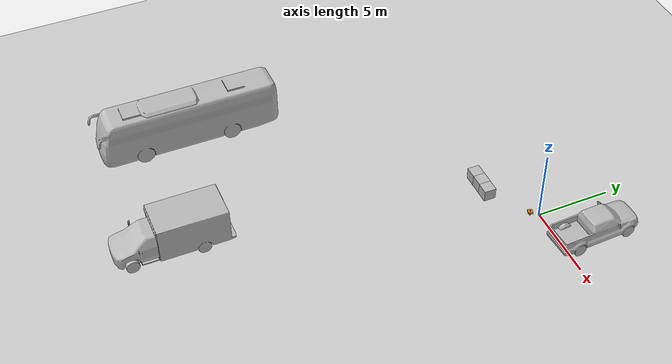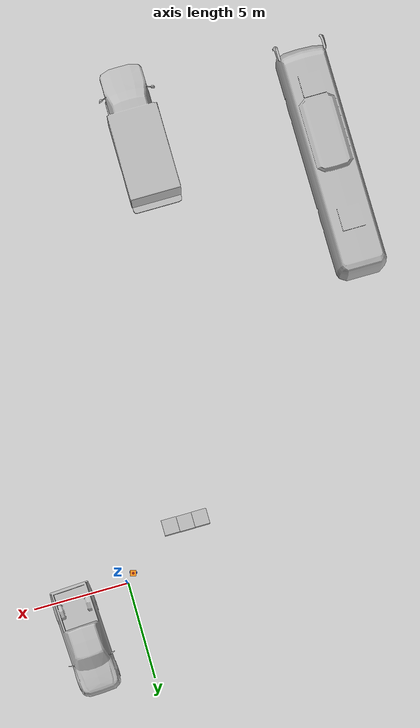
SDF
<sdf version="1.7">
 <world name="default">
  <light name="sun" type="directional">
   <pose>0 0 10 0 -0 0</pose>
   <diffuse>0.8 0.8 0.8 1</diffuse>
   <specular>0.2 0.2 0.2 1</specular>
   <attenuation>
    <range>1000</range>
    <constant>0.9</constant>
    <linear>0.01</linear>
    <quadratic>0.001</quadratic>
   </attenuation>
   <direction>-0.5 0.1 -0.9</direction>
   <spot><inner_angle>0</inner_angle><outer_angle>0</outer_angle><falloff>0</falloff></spot>
  </light>
  <model name="ground_plane">
   <static>1</static>
   <link name="link">
    <collision name="collision">
     <geometry><plane><normal>0 0 1</normal><size>100 100</size></plane></geometry>
     <surface><friction><ode><mu>100</mu><mu2>50</mu2></ode></friction></surface>
    </collision>
    <visual name="visual">
     <cast_shadows>0</cast_shadows>
     <geometry><plane><normal>0 0 1</normal><size>100 100</size></plane></geometry>
     <material>
      <script><uri>file://media/materials/scripts/gazebo.material</uri><name>Gazebo/Grey</name></script>
     </material>
    </visual>
   </link>
  </model>
  <gravity>0 0 -9.8</gravity>
  <magnetic_field>6e-06 2.3e-05 -4.2e-05</magnetic_field>
  <atmosphere type="adiabatic"/>
  <physics type="ode">
   <max_step_size>0.001</max_step_size>
   <real_time_factor>1</real_time_factor>
   <real_time_update_rate>1000</real_time_update_rate>
  </physics>
  <scene><ambient>0.4 0.4 0.4 1</ambient><background>0.7 0.7 0.7 1</background><shadows>1</shadows></scene>
  <audio><device>default</device></audio>
  <spherical_coordinates>
   <surface_model>EARTH_WGS84</surface_model>
   <latitude_deg>0</latitude_deg>
   <longitude_deg>0</longitude_deg>
   <elevation>0</elevation>
   <heading_deg>0</heading_deg>
  </spherical_coordinates>
  <model name="alpr_bot">
   <link name="base_link">
    <inertial>
     <pose>0.062857 0 0.077857 0 -0 0</pose>
     <mass>0.7</mass>
     <inertia>
      <ixx>0.00632262</ixx>
      <ixy>0</ixy>
      <ixz>0.000700714</ixz>
      <iyy>0.0070169</iyy>
      <iyz>0</iyz>
      <izz>0.00841929</izz>
     </inertia>
    </inertial>
    <collision name="base_link_fixed_joint_lump__chassis_collision">
     <pose>0.05 0 0.075 0 -0 0</pose>
     <geometry><box><size>0.3 0.3 0.15</size></box></geometry>
    </collision>
    <collision name="base_link_fixed_joint_lump__caster_wheel_collision_1">
     <pose>0.14 0 0 0 -0 0</pose>
     <geometry><sphere><radius>0.05</radius></sphere></geometry>
     <surface><friction><ode><mu>0.001</mu><mu2>0.001</mu2></ode></friction></surface>
    </collision>
    <collision name="base_link_fixed_joint_lump__laser_link_collision_2">
     <pose>0.05 0 0.17 0 -0 0</pose>
     <geometry><cylinder><length>0.04</length><radius>0.05</radius></cylinder></geometry>
    </collision>
    <visual name="base_link_fixed_joint_lump__chassis_visual">
     <pose>0.05 0 0.075 0 -0 0</pose>
     <geometry><box><size>0.3 0.3 0.15</size></box></geometry>
     <material>
      <script><name>Gazebo/Orange</name><uri>file://media/materials/scripts/gazebo.material</uri></script>
     </material>
    </visual>
    <visual name="base_link_fixed_joint_lump__caster_wheel_visual_1">
     <pose>0.14 0 0 0 -0 0</pose>
     <geometry><sphere><radius>0.05</radius></sphere></geometry>
     <material>
      <script><name>Gazebo/White</name><uri>file://media/materials/scripts/gazebo.material</uri></script>
     </material>
    </visual>
    <visual name="base_link_fixed_joint_lump__laser_link_visual_2">
     <pose>0.05 0 0.17 0 -0 0</pose>
     <geometry><cylinder><length>0.04</length><radius>0.05</radius></cylinder></geometry>
     <material>
      <script><name>Gazebo/Red</name><uri>file://media/materials/scripts/gazebo.material</uri></script>
     </material>
    </visual>
    <sensor name="laser" type="ray">
     <visualize>1</visualize>
     <update_rate>10</update_rate>
     <ray>
      <scan>
       <horizontal>
        <samples>360</samples>
        <min_angle>-3.14</min_angle>
        <max_angle>3.14</max_angle>
        <resolution>1</resolution>
       </horizontal>
       <vertical><samples>1</samples><min_angle>0</min_angle><max_angle>0</max_angle></vertical>
      </scan>
      <range><min>0.3</min><max>12</max></range>
     </ray>
     <plugin name="laser_controller" filename="libgazebo_ros_ray_sensor.so">
      <ros><argument>~/out:=scan</argument></ros>
      <output_type>sensor_msgs/LaserScan</output_type>
      <frame_name>laser_link</frame_name>
     </plugin>
     <pose>0.05 0 0.17 0 -0 0</pose>
    </sensor>
   </link>
   <joint name="left_wheel_joint" type="revolute">
    <pose relative_to="base_link">0 0.175 0 -1.5708 0 0</pose>
    <parent>base_link</parent>
    <child>left_wheel</child>
    <axis>
     <xyz>0 0 1</xyz>
     <limit><lower>-1e+16</lower><upper>1e+16</upper></limit>
     <dynamics><spring_reference>0</spring_reference><spring_stiffness>0</spring_stiffness></dynamics>
    </axis>
   </joint>
   <link name="left_wheel">
    <pose relative_to="left_wheel_joint">0 0 0 0 -0 0</pose>
    <inertial>
     <mass>0.05</mass>
     <inertia>
      <ixx>3.79167e-05</ixx>
      <ixy>0</ixy>
      <ixz>0</ixz>
      <iyy>3.79167e-05</iyy>
      <iyz>0</iyz>
      <izz>6.25e-05</izz>
     </inertia>
    </inertial>
    <collision name="left_wheel_collision">
     <geometry><cylinder><length>0.04</length><radius>0.05</radius></cylinder></geometry>
    </collision>
    <visual name="left_wheel_visual">
     <geometry><cylinder><length>0.04</length><radius>0.05</radius></cylinder></geometry>
     <material>
      <script><name>Gazebo/Blue</name><uri>file://media/materials/scripts/gazebo.material</uri></script>
     </material>
    </visual>
   </link>
   <joint name="right_wheel_joint" type="revolute">
    <pose relative_to="base_link">0 -0.175 0 1.5708 -0 0</pose>
    <parent>base_link</parent>
    <child>right_wheel</child>
    <axis>
     <xyz>0 0 -1</xyz>
     <limit><lower>-1e+16</lower><upper>1e+16</upper></limit>
     <dynamics><spring_reference>0</spring_reference><spring_stiffness>0</spring_stiffness></dynamics>
    </axis>
   </joint>
   <link name="right_wheel">
    <pose relative_to="right_wheel_joint">0 0 0 0 -0 0</pose>
    <inertial>
     <mass>0.05</mass>
     <inertia>
      <ixx>3.79167e-05</ixx>
      <ixy>0</ixy>
      <ixz>0</ixz>
      <iyy>3.79167e-05</iyy>
      <iyz>0</iyz>
      <izz>6.25e-05</izz>
     </inertia>
    </inertial>
    <collision name="right_wheel_collision">
     <geometry><cylinder><length>0.04</length><radius>0.05</radius></cylinder></geometry>
    </collision>
    <visual name="right_wheel_visual">
     <geometry><cylinder><length>0.04</length><radius>0.05</radius></cylinder></geometry>
     <material>
      <script><name>Gazebo/Blue</name><uri>file://media/materials/scripts/gazebo.material</uri></script>
     </material>
    </visual>
   </link>
   <static>0</static>
   <plugin name="diff_drive" filename="libgazebo_ros_diff_drive.so">
    <left_joint>left_wheel_joint</left_joint>
    <right_joint>right_wheel_joint</right_joint>
    <wheel_separation>0.35</wheel_separation>
    <wheel_diameter>0.1</wheel_diameter>
    <max_wheel_torque>200</max_wheel_torque>
    <max_wheel_acceleration>10.0</max_wheel_acceleration>
    <odometry_frame>odom</odometry_frame>
    <robot_base_frame>base_link</robot_base_frame>
    <publish_odom>1</publish_odom>
    <publish_odom_tf>1</publish_odom_tf>
    <publish_wheel_tf>1</publish_wheel_tf>
   </plugin>
   <pose>-0.383578 -0.467579 0.049994 3.4e-05 -4e-06 1.27347</pose>
  </model>
  <model name="ambulance">
   <static>1</static>
   <link name="link">
    <collision name="collision">
     <geometry>
      <mesh><scale>0.0254 0.0254 0.0254</scale><uri>model://ambulance/meshes/ambulance.obj</uri></mesh>
     </geometry>
    </collision>
    <visual name="visual">
     <geometry>
      <mesh><scale>0.0254 0.0254 0.0254</scale><uri>model://ambulance/meshes/ambulance.obj</uri></mesh>
     </geometry>
    </visual>
   </link>
   <pose>-6.76315 -21.9306 0 0 -0 0</pose>
  </model>
  <model name="bus">
   <static>1</static>
   <link name="link">
    <collision name="collision">
     <geometry><mesh><scale>0.01 0.01 0.01</scale><uri>model://bus/meshes/bus.obj</uri></mesh></geometry>
    </collision>
    <visual name="visual">
     <geometry><mesh><scale>0.01 0.01 0.01</scale><uri>model://bus/meshes/bus.obj</uri></mesh></geometry>
    </visual>
   </link>
   <pose>-15.9366 -18.0697 0 0 -0 0</pose>
  </model>
  <model name="number4">
   <pose>-3.65797 -2.17957 0.4 0 -0 0</pose>
   <static>1</static>
   <link name="link">
    <visual name="visual">
     <geometry><mesh><uri>model://number1/meshes/number.dae</uri></mesh></geometry>
     <material>
      <script>
       <uri>model://number4/materials/scripts</uri>
       <uri>model://number4/materials/textures</uri>
       <name>Number/Four</name>
      </script>
     </material>
    </visual>
   </link>
  </model>
  <model name="number1">
   <pose>-4.44824 -2.1863 0.4 0 -0 0</pose>
   <static>1</static>
   <link name="link">
    <visual name="visual">
     <geometry><mesh><uri>model://number1/meshes/number.dae</uri></mesh></geometry>
     <material>
      <script>
       <uri>model://number1/materials/scripts</uri>
       <uri>model://number1/materials/textures</uri>
       <name>Number/One</name>
      </script>
     </material>
    </visual>
   </link>
  </model>
  <model name="number9">
   <pose>-2.86266 -2.18841 0.4 0 -0 0</pose>
   <static>1</static>
   <link name="link">
    <visual name="visual">
     <geometry><mesh><uri>model://number1/meshes/number.dae</uri></mesh></geometry>
     <material>
      <script>
       <uri>model://number9/materials/scripts</uri>
       <uri>model://number9/materials/textures</uri>
       <name>Number/Nine</name>
      </script>
     </material>
    </visual>
   </link>
  </model>
  <model name="pickup">
   <static>1</static>
   <link name="link">
    <collision name="collision">
     <pose>0 0 0 0 0 -1.5708</pose>
     <geometry><mesh><uri>model://pickup/meshes/pickup.dae</uri></mesh></geometry>
    </collision>
    <visual name="visual">
     <pose>0 0 0 0 0 -1.5708</pose>
     <geometry><mesh><uri>model://pickup/meshes/pickup.dae</uri></mesh></geometry>
    </visual>
   </link>
   <pose>2.83939 2.3072 0 0 -0 1.62041</pose>
  </model>
 </world>
</sdf>
